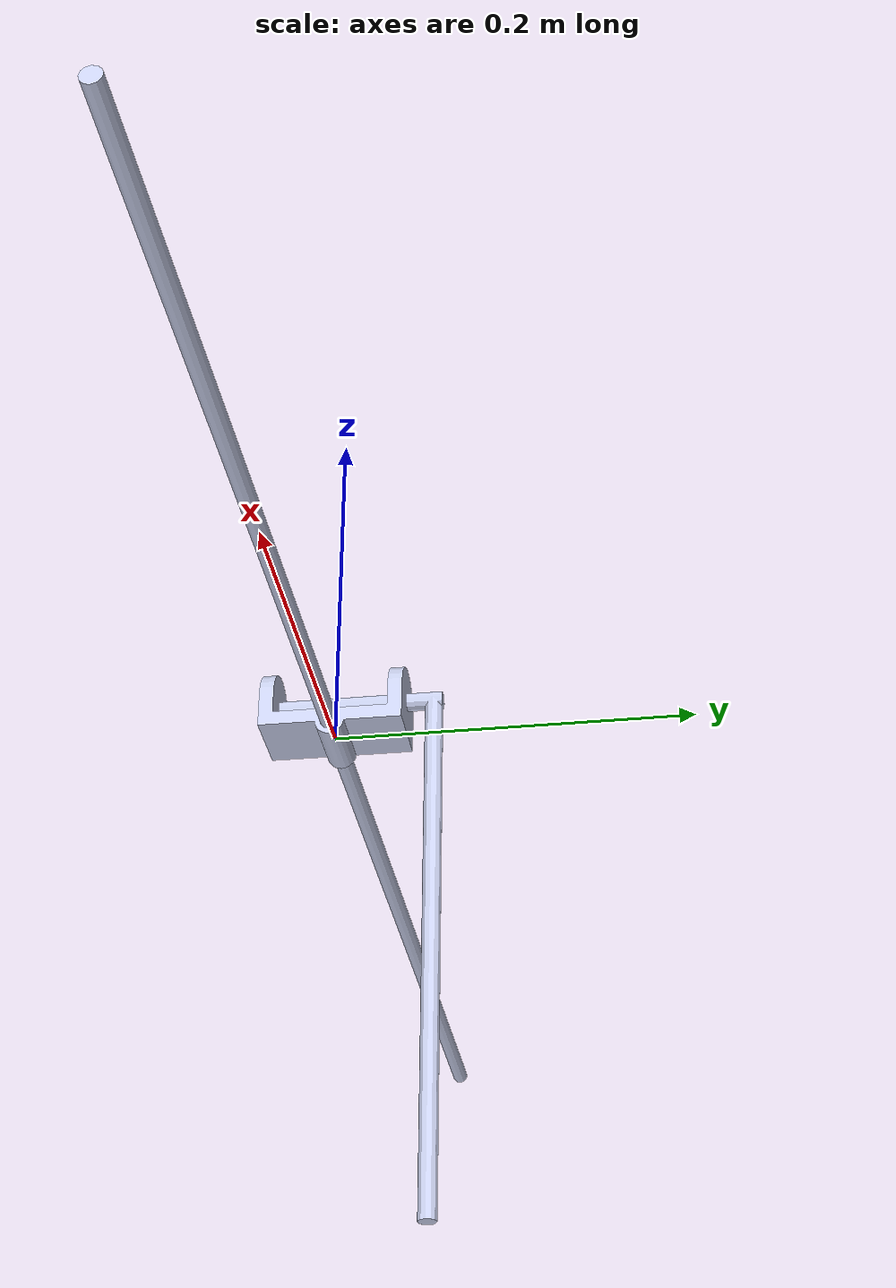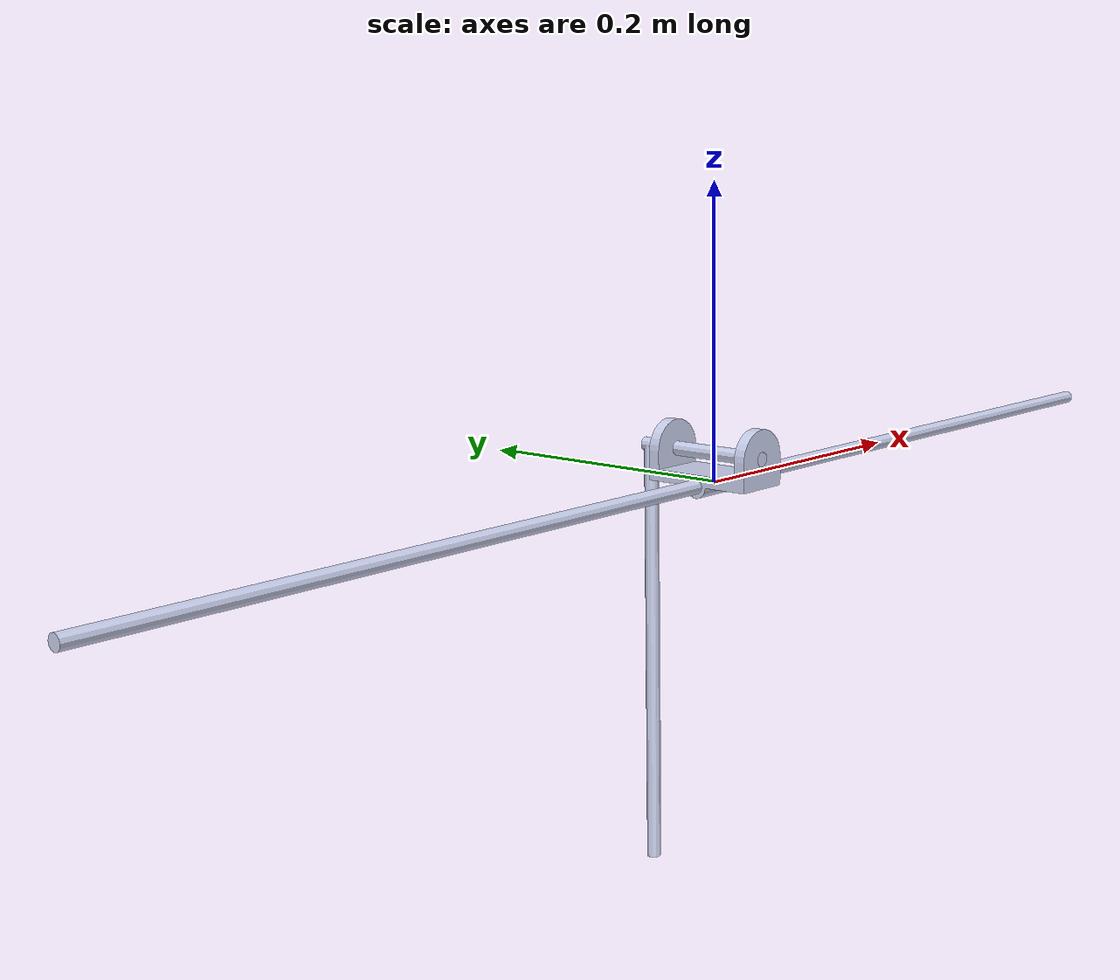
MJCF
<mujoco model="cartpole_mujoco">
  <compiler angle="radian"/>

  <asset>
    <mesh name="base_link" content_type="model/stl" file="base_link.STL"/>
    <mesh name="cart" content_type="model/stl" file="cart.STL"/>
    <mesh name="pole_hinge" content_type="model/stl" file="pole_hinge.STL"/>
  </asset>

  <worldbody>
    <geom type="mesh" rgba="0.79216 0.81961 0.93333 1" mesh="base_link"/>
    <body name="cart" quat="0.499998 -0.5 -0.500002 0.5">
      <inertial pos="0 -0.010651 0" quat="0.5 0.5 0.5 0.5" mass="0.042956" diaginertia="4.0691e-05 4.0384e-05 1.0797e-05"/>
      <joint name="cart_prismatic" pos="0 0 0" axis="0 0 -1" type="slide" range="-0.47 0.47" actuatorfrcrange="-1000 1000"/>
      <geom type="mesh" rgba="0.79216 0.81961 0.93333 1" contype="0" conaffinity="0" mesh="cart"/>
      <body name="pole_hinge" pos="0.036 -0.02 0" quat="0.499998 0.5 0.500002 0.5">
        <inertial pos="0.11369 7.263e-07 0.0076308" quat="0.532978 0.464687 0.464699 0.532968" mass="0.031087" diaginertia="0.00032381 0.000310946 1.32452e-05"/>
        <joint name="pole_hinge" pos="0 0 0" axis="0 0 1" damping="0.001"/>
        <geom type="mesh" rgba="0.79216 0.81961 0.93333 1" contype="0" conaffinity="0" mesh="pole_hinge"/>
      </body>
    </body>
  </worldbody>
  <actuator>
    <motor joint="cart_prismatic" name="cart_motor" ctrllimited="true" ctrlrange="-30 30"/>
  </actuator>
</mujoco>
